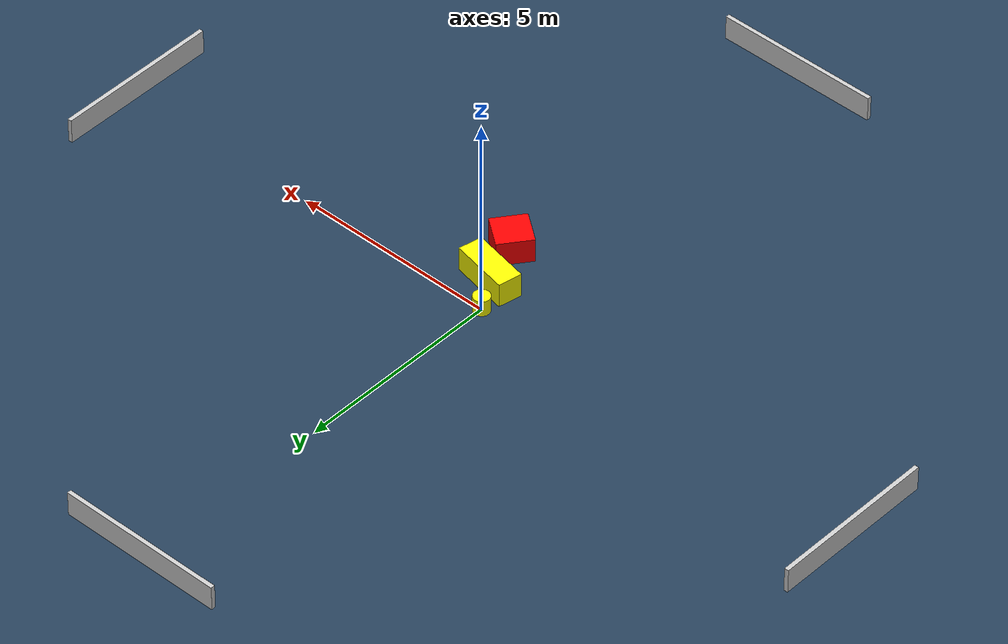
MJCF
<?xml version="1.0" ?>
<mujoco model="generated_environment">
  <option timestep="0.01" integrator="RK4" cone="elliptic"/>
  <default>
    <geom density="1"/>
  </default>
  <asset>
    <texture builtin="gradient" height="3072" name="skybox" rgb1="0.3 0.5 0.7" rgb2="0 0 0" type="skybox" width="512"/>
    <texture builtin="checker" height="300" name="groundplane" rgb1="0.2 0.3 0.4" rgb2="0.1 0.2 0.3" type="2d" width="300"/>
    <material name="groundplane" reflectance="0.2" texrepeat="5 5" texture="groundplane"/>
  </asset>
  <worldbody>
    <light dir="0 0 -1" directional="true" pos="0 0 1.5"/>
    <geom condim="3" friction="0.5 0.005 0.001" material="groundplane" name="floor" pos="0 0 0" size="0 0 0.05" type="plane"/>
    <body name="walls">
      <geom name="wall_1" condim="4" pos="-10.0 0.0 0.3" rgba="0.800000011920929 0.800000011920929 0.800000011920929 1.0" size="0.05 2.0 0.3" type="box"/>
      <geom name="wall_2" condim="4" pos="10.0 0.0 0.3" rgba="0.800000011920929 0.800000011920929 0.800000011920929 1.0" size="0.05 2.0 0.3" type="box"/>
      <geom name="wall_3" condim="4" pos="0.0 -10.0 0.3" rgba="0.800000011920929 0.800000011920929 0.800000011920929 1.0" size="2.0 0.05 0.3" type="box"/>
      <geom name="wall_4" condim="4" pos="0.0 10.0 0.3" rgba="0.800000011920929 0.800000011920929 0.800000011920929 1.0" size="2.0 0.05 0.3" type="box"/>
    </body>
    <body name="robot">
      <joint name="joint_x" type="slide" pos="0 0 0" axis="1 0 0"/>
      <joint name="joint_y" type="slide" pos="0 0 0" axis="0 1 0"/>
      <geom name="robot" type="cylinder" pos="0.0 0.0 0.2" size="0.2 0.2 0.0" mass="5.0" friction="1.0 0.005 0.0001" condim="4" rgba="1.0 1.0 0.0 1.0"/>
    </body>
    <body name="obstacle_1_movable">
      <geom name="obstacle_1_movable" condim="4" pos="0.43922910246844143 -0.7378206383093505 0.3" euler="0 0 168.41409966871288" friction="0.0 0.005 0.001" rgba="1.0 1.0 0.0 1.0" size="0.7063877423484426 0.2888846815733684 0.3" type="box" mass="0.1"/>
      <joint type="free"/>
    </body>
    <body name="obstacle_2_static">
      <geom name="obstacle_2_static" condim="4" pos="0.7781077827145185 -1.7766777117795696 0.3" euler="0 0 143.0063676904316" friction="0.0 0.005 0.001" rgba="1.0 0.0 0.0 1.0" size="0.4165578079528105 0.4225627717974727 0.3" type="box"/>
    </body>
  </worldbody>
  <actuator>
    <motor name="actuator_x" joint="joint_x" gear="1" ctrlrange="-1 1"/>
    <motor name="actuator_y" joint="joint_y" gear="1" ctrlrange="-1 1"/>
  </actuator>
</mujoco>
